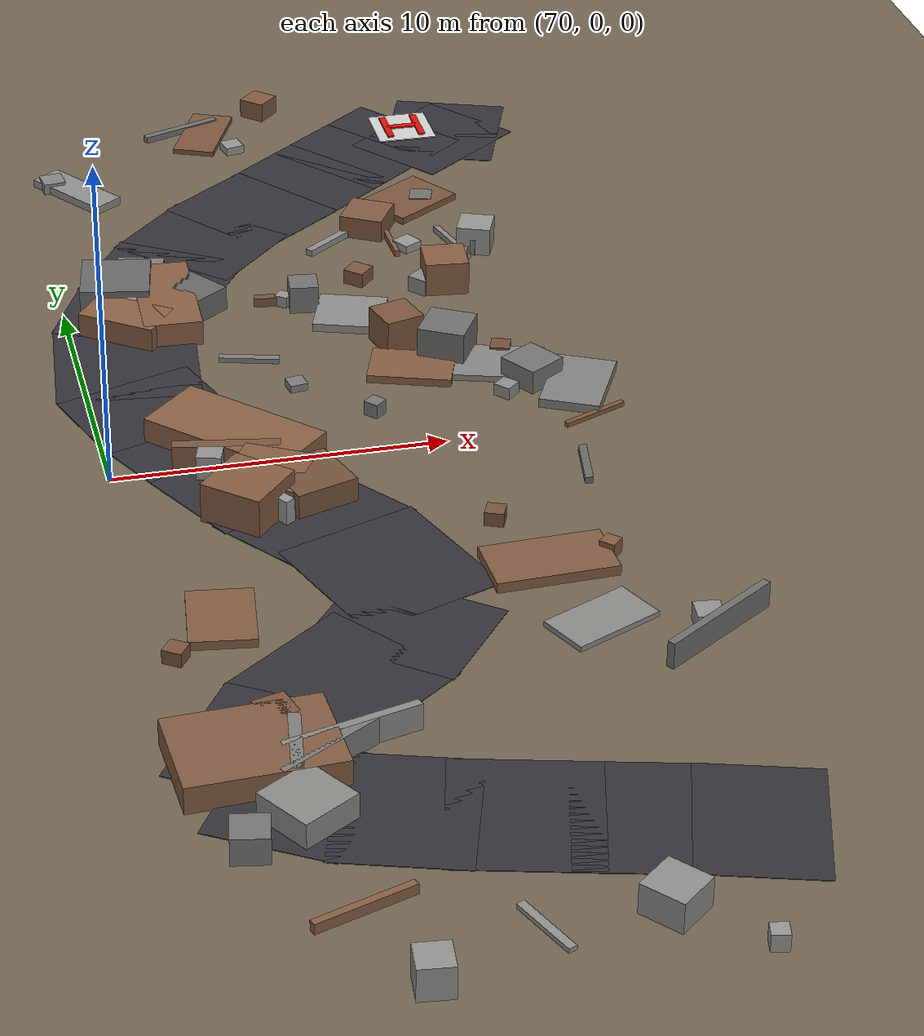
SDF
<sdf version="1.6">
 <world name="navitas_arena">
  <model name="ground_plane">
   <static>true</static>
   <link name="link">
    <collision name="collision">
     <geometry><plane><normal>0 0 1</normal><size>400 400</size></plane></geometry>
     <surface><friction><ode><mu>0.550</mu><mu2>0.550</mu2></ode></friction></surface>
    </collision>
    <visual name="visual">
     <cast_shadows>false</cast_shadows>
     <geometry><plane><normal>0 0 1</normal><size>400 400</size></plane></geometry>
     <material><ambient>0.450 0.400 0.320 1</ambient><diffuse>0.450 0.400 0.320 1</diffuse></material>
    </visual>
   </link>
  </model>
  <model name="road_zor_1_3">
   <static>true</static>
   <pose>83.267 -19.138 0.040 0 0 2.846</pose>
   <link name="link">
    <collision name="col"><geometry><box><size>3.385 4.400 0.020</size></box></geometry></collision>
    <visual name="vis">
     <geometry><box><size>3.385 4.400 0.020</size></box></geometry>
     <material><ambient>0.20 0.20 0.22 1</ambient><diffuse>0.20 0.20 0.22 1</diffuse></material>
    </visual>
   </link>
  </model>
  <model name="road_zor_1_4">
   <static>true</static>
   <pose>80.633 -18.409 0.040 0 0 2.893</pose>
   <link name="link">
    <collision name="col"><geometry><box><size>3.882 4.400 0.020</size></box></geometry></collision>
    <visual name="vis">
     <geometry><box><size>3.882 4.400 0.020</size></box></geometry>
     <material><ambient>0.20 0.20 0.22 1</ambient><diffuse>0.20 0.20 0.22 1</diffuse></material>
    </visual>
   </link>
  </model>
  <model name="road_zor_1_5">
   <static>true</static>
   <pose>77.702 -17.657 0.040 0 0 2.888</pose>
   <link name="link">
    <collision name="col"><geometry><box><size>3.970 4.400 0.020</size></box></geometry></collision>
    <visual name="vis">
     <geometry><box><size>3.970 4.400 0.020</size></box></geometry>
     <material><ambient>0.20 0.20 0.22 1</ambient><diffuse>0.20 0.20 0.22 1</diffuse></material>
    </visual>
   </link>
  </model>
  <model name="road_zor_1_6">
   <static>true</static>
   <pose>74.907 -16.853 0.040 0 0 2.833</pose>
   <link name="link">
    <collision name="col"><geometry><box><size>3.649 4.400 0.020</size></box></geometry></collision>
    <visual name="vis">
     <geometry><box><size>3.649 4.400 0.020</size></box></geometry>
     <material><ambient>0.20 0.20 0.22 1</ambient><diffuse>0.20 0.20 0.22 1</diffuse></material>
    </visual>
   </link>
  </model>
  <model name="road_zor_1_7">
   <static>true</static>
   <pose>72.438 -15.717 0.040 0 0 2.588</pose>
   <link name="link">
    <collision name="col"><geometry><box><size>3.627 4.400 0.020</size></box></geometry></collision>
    <visual name="vis">
     <geometry><box><size>3.627 4.400 0.020</size></box></geometry>
     <material><ambient>0.20 0.20 0.22 1</ambient><diffuse>0.20 0.20 0.22 1</diffuse></material>
    </visual>
   </link>
  </model>
  <model name="road_zor_1_8">
   <static>true</static>
   <pose>72.194 -13.587 0.040 0 0 0.996</pose>
   <link name="link">
    <collision name="col"><geometry><box><size>4.267 4.400 0.020</size></box></geometry></collision>
    <visual name="vis">
     <geometry><box><size>4.267 4.400 0.020</size></box></geometry>
     <material><ambient>0.20 0.20 0.22 1</ambient><diffuse>0.20 0.20 0.22 1</diffuse></material>
    </visual>
   </link>
  </model>
  <model name="road_zor_1_9">
   <static>true</static>
   <pose>74.497 -11.124 0.040 0 0 0.649</pose>
   <link name="link">
    <collision name="col"><geometry><box><size>4.380 4.400 0.020</size></box></geometry></collision>
    <visual name="vis">
     <geometry><box><size>4.380 4.400 0.020</size></box></geometry>
     <material><ambient>0.20 0.20 0.22 1</ambient><diffuse>0.20 0.20 0.22 1</diffuse></material>
    </visual>
   </link>
  </model>
  <model name="road_zor_1_10">
   <static>true</static>
   <pose>76.695 -9.036 0.040 0 0 0.907</pose>
   <link name="link">
    <collision name="col"><geometry><box><size>3.533 4.400 0.020</size></box></geometry></collision>
    <visual name="vis">
     <geometry><box><size>3.533 4.400 0.020</size></box></geometry>
     <material><ambient>0.20 0.20 0.22 1</ambient><diffuse>0.20 0.20 0.22 1</diffuse></material>
    </visual>
   </link>
  </model>
  <model name="road_zor_1_11">
   <static>true</static>
   <pose>76.862 -6.250 0.040 0 0 1.923</pose>
   <link name="link">
    <collision name="col"><geometry><box><size>4.629 4.400 0.020</size></box></geometry></collision>
    <visual name="vis">
     <geometry><box><size>4.629 4.400 0.020</size></box></geometry>
     <material><ambient>0.20 0.20 0.22 1</ambient><diffuse>0.20 0.20 0.22 1</diffuse></material>
    </visual>
   </link>
  </model>
  <model name="road_zor_1_12">
   <static>true</static>
   <pose>75.355 -3.333 0.040 0 0 2.208</pose>
   <link name="link">
    <collision name="col"><geometry><box><size>3.803 4.400 0.020</size></box></geometry></collision>
    <visual name="vis">
     <geometry><box><size>3.803 4.400 0.020</size></box></geometry>
     <material><ambient>0.20 0.20 0.22 1</ambient><diffuse>0.20 0.20 0.22 1</diffuse></material>
    </visual>
   </link>
  </model>
  <model name="road_zor_1_13">
   <static>true</static>
   <pose>73.875 -1.000 0.040 0 0 2.056</pose>
   <link name="link">
    <collision name="col"><geometry><box><size>3.538 4.400 0.020</size></box></geometry></collision>
    <visual name="vis">
     <geometry><box><size>3.538 4.400 0.020</size></box></geometry>
     <material><ambient>0.20 0.20 0.22 1</ambient><diffuse>0.20 0.20 0.22 1</diffuse></material>
    </visual>
   </link>
  </model>
  <model name="road_zor_1_14">
   <static>true</static>
   <pose>72.677 1.333 0.040 0 0 2.034</pose>
   <link name="link">
    <collision name="col"><geometry><box><size>3.508 4.400 0.020</size></box></geometry></collision>
    <visual name="vis">
     <geometry><box><size>3.508 4.400 0.020</size></box></geometry>
     <material><ambient>0.20 0.20 0.22 1</ambient><diffuse>0.20 0.20 0.22 1</diffuse></material>
    </visual>
   </link>
  </model>
  <model name="road_zor_1_15">
   <static>true</static>
   <pose>71.696 3.667 0.040 0 0 1.900</pose>
   <link name="link">
    <collision name="col"><geometry><box><size>3.366 4.400 0.020</size></box></geometry></collision>
    <visual name="vis">
     <geometry><box><size>3.366 4.400 0.020</size></box></geometry>
     <material><ambient>0.20 0.20 0.22 1</ambient><diffuse>0.20 0.20 0.22 1</diffuse></material>
    </visual>
   </link>
  </model>
  <model name="road_zor_1_16">
   <static>true</static>
   <pose>71.485 6.630 0.040 0 0 1.466</pose>
   <link name="link">
    <collision name="col"><geometry><box><size>4.512 4.400 0.020</size></box></geometry></collision>
    <visual name="vis">
     <geometry><box><size>4.512 4.400 0.020</size></box></geometry>
     <material><ambient>0.20 0.20 0.22 1</ambient><diffuse>0.20 0.20 0.22 1</diffuse></material>
    </visual>
   </link>
  </model>
  <model name="road_zor_1_17">
   <static>true</static>
   <pose>72.223 9.639 0.040 0 0 1.146</pose>
   <link name="link">
    <collision name="col"><geometry><box><size>3.563 4.400 0.020</size></box></geometry></collision>
    <visual name="vis">
     <geometry><box><size>3.563 4.400 0.020</size></box></geometry>
     <material><ambient>0.20 0.20 0.22 1</ambient><diffuse>0.20 0.20 0.22 1</diffuse></material>
    </visual>
   </link>
  </model>
  <model name="road_zor_1_18">
   <static>true</static>
   <pose>73.441 11.926 0.040 0 0 1.014</pose>
   <link name="link">
    <collision name="col"><geometry><box><size>3.430 4.400 0.020</size></box></geometry></collision>
    <visual name="vis">
     <geometry><box><size>3.430 4.400 0.020</size></box></geometry>
     <material><ambient>0.20 0.20 0.22 1</ambient><diffuse>0.20 0.20 0.22 1</diffuse></material>
    </visual>
   </link>
  </model>
  <model name="road_zor_1_19">
   <static>true</static>
   <pose>75.065 14.014 0.040 0 0 0.815</pose>
   <link name="link">
    <collision name="col"><geometry><box><size>3.687 4.400 0.020</size></box></geometry></collision>
    <visual name="vis">
     <geometry><box><size>3.687 4.400 0.020</size></box></geometry>
     <material><ambient>0.20 0.20 0.22 1</ambient><diffuse>0.20 0.20 0.22 1</diffuse></material>
    </visual>
   </link>
  </model>
  <model name="road_zor_1_20">
   <static>true</static>
   <pose>77.100 15.866 0.040 0 0 0.660</pose>
   <link name="link">
    <collision name="col"><geometry><box><size>3.634 4.400 0.020</size></box></geometry></collision>
    <visual name="vis">
     <geometry><box><size>3.634 4.400 0.020</size></box></geometry>
     <material><ambient>0.20 0.20 0.22 1</ambient><diffuse>0.20 0.20 0.22 1</diffuse></material>
    </visual>
   </link>
  </model>
  <model name="road_zor_1_21">
   <static>true</static>
   <pose>79.285 17.616 0.040 0 0 0.690</pose>
   <link name="link">
    <collision name="col"><geometry><box><size>3.765 4.400 0.020</size></box></geometry></collision>
    <visual name="vis">
     <geometry><box><size>3.765 4.400 0.020</size></box></geometry>
     <material><ambient>0.20 0.20 0.22 1</ambient><diffuse>0.20 0.20 0.22 1</diffuse></material>
    </visual>
   </link>
  </model>
  <model name="road_zor_1_22">
   <static>true</static>
   <pose>81.528 19.461 0.040 0 0 0.687</pose>
   <link name="link">
    <collision name="col"><geometry><box><size>3.844 4.400 0.020</size></box></geometry></collision>
    <visual name="vis">
     <geometry><box><size>3.844 4.400 0.020</size></box></geometry>
     <material><ambient>0.20 0.20 0.22 1</ambient><diffuse>0.20 0.20 0.22 1</diffuse></material>
    </visual>
   </link>
  </model>
  <model name="road_zor_1_23">
   <static>true</static>
   <pose>83.037 20.697 0.040 0 0 0.685</pose>
   <link name="link">
    <collision name="col"><geometry><box><size>1.857 4.400 0.020</size></box></geometry></collision>
    <visual name="vis">
     <geometry><box><size>1.857 4.400 0.020</size></box></geometry>
     <material><ambient>0.20 0.20 0.22 1</ambient><diffuse>0.20 0.20 0.22 1</diffuse></material>
    </visual>
   </link>
  </model>
  <model name="road_zor_2_18">
   <static>true</static>
   <pose>84.243 19.935 0.040 0 0 2.236</pose>
   <link name="link">
    <collision name="col"><geometry><box><size>3.607 4.400 0.020</size></box></geometry></collision>
    <visual name="vis">
     <geometry><box><size>3.607 4.400 0.020</size></box></geometry>
     <material><ambient>0.20 0.20 0.22 1</ambient><diffuse>0.20 0.20 0.22 1</diffuse></material>
    </visual>
   </link>
  </model>
  <model name="road_zor_3_26">
   <static>true</static>
   <pose>84.782 20.494 0.040 0 0 2.789</pose>
   <link name="link">
    <collision name="col"><geometry><box><size>3.828 4.400 0.020</size></box></geometry></collision>
    <visual name="vis">
     <geometry><box><size>3.828 4.400 0.020</size></box></geometry>
     <material><ambient>0.20 0.20 0.22 1</ambient><diffuse>0.20 0.20 0.22 1</diffuse></material>
    </visual>
   </link>
  </model>
  <model name="blk_zor_1_0_0">
   <static>true</static>
   <pose>71.615 -14.204 0.400 0 0 0.051</pose>
   <link name="link">
    <collision name="col"><geometry><box><size>4.305 2.989 0.800</size></box></geometry></collision>
    <visual name="vis">
     <geometry><box><size>4.305 2.989 0.800</size></box></geometry>
     <material><ambient>0.51 0.36 0.26 1</ambient><diffuse>0.51 0.36 0.26 1</diffuse></material>
    </visual>
   </link>
  </model>
  <model name="blk_zor_1_0_1">
   <static>true</static>
   <pose>72.615 -14.445 0.400 0 0 1.418</pose>
   <link name="link">
    <collision name="col"><geometry><box><size>2.310 0.341 0.800</size></box></geometry></collision>
    <visual name="vis">
     <geometry><box><size>2.310 0.341 0.800</size></box></geometry>
     <material><ambient>0.49 0.49 0.48 1</ambient><diffuse>0.49 0.49 0.48 1</diffuse></material>
    </visual>
   </link>
  </model>
  <model name="blk_zor_1_0_2">
   <static>true</static>
   <pose>72.478 -16.623 0.400 0 0 0.560</pose>
   <link name="link">
    <collision name="col"><geometry><box><size>1.789 1.789 0.800</size></box></geometry></collision>
    <visual name="vis">
     <geometry><box><size>1.789 1.789 0.800</size></box></geometry>
     <material><ambient>0.54 0.54 0.53 1</ambient><diffuse>0.54 0.54 0.53 1</diffuse></material>
    </visual>
   </link>
  </model>
  <model name="blk_zor_1_0_3">
   <static>true</static>
   <pose>74.141 -14.028 0.400 0 0 0.257</pose>
   <link name="link">
    <collision name="col"><geometry><box><size>3.917 0.243 0.800</size></box></geometry></collision>
    <visual name="vis">
     <geometry><box><size>3.917 0.243 0.800</size></box></geometry>
     <material><ambient>0.54 0.54 0.53 1</ambient><diffuse>0.54 0.54 0.53 1</diffuse></material>
    </visual>
   </link>
  </model>
  <model name="blk_zor_1_0_4">
   <static>true</static>
   <pose>72.392 -12.914 0.400 0 0 0.266</pose>
   <link name="link">
    <collision name="col"><geometry><box><size>0.949 0.949 0.800</size></box></geometry></collision>
    <visual name="vis">
     <geometry><box><size>0.949 0.949 0.800</size></box></geometry>
     <material><ambient>0.49 0.34 0.24 1</ambient><diffuse>0.49 0.34 0.24 1</diffuse></material>
    </visual>
   </link>
  </model>
  <model name="blk_zor_1_0_5">
   <static>true</static>
   <pose>70.871 -17.593 0.400 0 0 1.401</pose>
   <link name="link">
    <collision name="col"><geometry><box><size>1.012 1.012 0.800</size></box></geometry></collision>
    <visual name="vis">
     <geometry><box><size>1.012 1.012 0.800</size></box></geometry>
     <material><ambient>0.46 0.46 0.45 1</ambient><diffuse>0.46 0.46 0.45 1</diffuse></material>
    </visual>
   </link>
  </model>
  <model name="blk_zor_1_0_6">
   <static>true</static>
   <pose>73.392 -14.700 0.400 0 0 0.547</pose>
   <link name="link">
    <collision name="col"><geometry><box><size>3.239 0.311 0.800</size></box></geometry></collision>
    <visual name="vis">
     <geometry><box><size>3.239 0.311 0.800</size></box></geometry>
     <material><ambient>0.48 0.48 0.47 1</ambient><diffuse>0.48 0.48 0.47 1</diffuse></material>
    </visual>
   </link>
  </model>
  <model name="blk_zor_1_1_0">
   <static>true</static>
   <pose>72.890 -0.336 0.400 0 0 1.282</pose>
   <link name="link">
    <collision name="col"><geometry><box><size>0.741 0.741 0.800</size></box></geometry></collision>
    <visual name="vis">
     <geometry><box><size>0.741 0.741 0.800</size></box></geometry>
     <material><ambient>0.57 0.57 0.56 1</ambient><diffuse>0.57 0.57 0.56 1</diffuse></material>
    </visual>
   </link>
  </model>
  <model name="blk_zor_1_1_1">
   <static>true</static>
   <pose>73.845 0.943 0.400 0 0 2.340</pose>
   <link name="link">
    <collision name="col"><geometry><box><size>4.881 2.336 0.800</size></box></geometry></collision>
    <visual name="vis">
     <geometry><box><size>4.881 2.336 0.800</size></box></geometry>
     <material><ambient>0.54 0.38 0.27 1</ambient><diffuse>0.54 0.38 0.27 1</diffuse></material>
    </visual>
   </link>
  </model>
  <model name="blk_zor_1_1_2">
   <static>true</static>
   <pose>73.428 0.024 0.400 0 0 2.967</pose>
   <link name="link">
    <collision name="col"><geometry><box><size>3.143 0.373 0.800</size></box></geometry></collision>
    <visual name="vis">
     <geometry><box><size>3.143 0.373 0.800</size></box></geometry>
     <material><ambient>0.48 0.34 0.24 1</ambient><diffuse>0.48 0.34 0.24 1</diffuse></material>
    </visual>
   </link>
  </model>
  <model name="blk_zor_1_1_3">
   <static>true</static>
   <pose>73.942 -2.360 0.400 0 0 2.148</pose>
   <link name="link">
    <collision name="col"><geometry><box><size>2.575 0.329 0.800</size></box></geometry></collision>
    <visual name="vis">
     <geometry><box><size>2.575 0.329 0.800</size></box></geometry>
     <material><ambient>0.59 0.59 0.58 1</ambient><diffuse>0.59 0.59 0.58 1</diffuse></material>
    </visual>
   </link>
  </model>
  <model name="blk_zor_1_1_4">
   <static>true</static>
   <pose>74.392 -1.558 0.400 0 0 1.057</pose>
   <link name="link">
    <collision name="col"><geometry><box><size>2.168 2.168 0.800</size></box></geometry></collision>
    <visual name="vis">
     <geometry><box><size>2.168 2.168 0.800</size></box></geometry>
     <material><ambient>0.53 0.37 0.27 1</ambient><diffuse>0.53 0.37 0.27 1</diffuse></material>
    </visual>
   </link>
  </model>
  <model name="blk_zor_1_1_5">
   <static>true</static>
   <pose>75.519 -2.067 0.400 0 0 0.322</pose>
   <link name="link">
    <collision name="col"><geometry><box><size>1.921 1.921 0.800</size></box></geometry></collision>
    <visual name="vis">
     <geometry><box><size>1.921 1.921 0.800</size></box></geometry>
     <material><ambient>0.46 0.33 0.23 1</ambient><diffuse>0.46 0.33 0.23 1</diffuse></material>
    </visual>
   </link>
  </model>
  <model name="blk_zor_1_1_6">
   <static>true</static>
   <pose>73.570 -2.633 0.614 0 0 2.413</pose>
   <link name="link">
    <collision name="col"><geometry><box><size>1.939 1.939 1.229</size></box></geometry></collision>
    <visual name="vis">
     <geometry><box><size>1.939 1.939 1.229</size></box></geometry>
     <material><ambient>0.53 0.37 0.26 1</ambient><diffuse>0.53 0.37 0.26 1</diffuse></material>
    </visual>
   </link>
  </model>
  <model name="blk_zor_1_2_0">
   <static>true</static>
   <pose>72.004 9.799 0.400 0 0 1.012</pose>
   <link name="link">
    <collision name="col"><geometry><box><size>1.029 1.029 0.800</size></box></geometry></collision>
    <visual name="vis">
     <geometry><box><size>1.029 1.029 0.800</size></box></geometry>
     <material><ambient>0.58 0.58 0.57 1</ambient><diffuse>0.58 0.58 0.57 1</diffuse></material>
    </visual>
   </link>
  </model>
  <model name="blk_zor_1_2_1">
   <static>true</static>
   <pose>72.604 11.177 0.400 0 0 1.323</pose>
   <link name="link">
    <collision name="col"><geometry><box><size>1.476 1.476 0.800</size></box></geometry></collision>
    <visual name="vis">
     <geometry><box><size>1.476 1.476 0.800</size></box></geometry>
     <material><ambient>0.49 0.49 0.48 1</ambient><diffuse>0.49 0.49 0.48 1</diffuse></material>
    </visual>
   </link>
  </model>
  <model name="blk_zor_1_2_2">
   <static>true</static>
   <pose>71.776 8.450 0.400 0 0 2.511</pose>
   <link name="link">
    <collision name="col"><geometry><box><size>2.545 1.501 0.800</size></box></geometry></collision>
    <visual name="vis">
     <geometry><box><size>2.545 1.501 0.800</size></box></geometry>
     <material><ambient>0.54 0.38 0.27 1</ambient><diffuse>0.54 0.38 0.27 1</diffuse></material>
    </visual>
   </link>
  </model>
  <model name="blk_zor_1_2_4">
   <static>true</static>
   <pose>71.751 10.475 0.505 0 0 2.963</pose>
   <link name="link">
    <collision name="col"><geometry><box><size>2.173 2.173 1.010</size></box></geometry></collision>
    <visual name="vis">
     <geometry><box><size>2.173 2.173 1.010</size></box></geometry>
     <material><ambient>0.41 0.41 0.41 1</ambient><diffuse>0.41 0.41 0.41 1</diffuse></material>
    </visual>
   </link>
  </model>
  <model name="blk_zor_1_2_5">
   <static>true</static>
   <pose>73.626 9.604 0.400 0 0 2.192</pose>
   <link name="link">
    <collision name="col"><geometry><box><size>2.100 2.100 0.800</size></box></geometry></collision>
    <visual name="vis">
     <geometry><box><size>2.100 2.100 0.800</size></box></geometry>
     <material><ambient>0.41 0.41 0.40 1</ambient><diffuse>0.41 0.41 0.40 1</diffuse></material>
    </visual>
   </link>
  </model>
  <model name="blk_zor_1_2_6">
   <static>true</static>
   <pose>73.155 9.351 0.400 0 0 1.534</pose>
   <link name="link">
    <collision name="col"><geometry><box><size>4.032 1.830 0.800</size></box></geometry></collision>
    <visual name="vis">
     <geometry><box><size>4.032 1.830 0.800</size></box></geometry>
     <material><ambient>0.54 0.37 0.27 1</ambient><diffuse>0.54 0.37 0.27 1</diffuse></material>
    </visual>
   </link>
  </model>
  <model name="deb_zor_9">
   <static>true</static>
   <pose>71.554 18.321 0.132 0 0 2.180</pose>
   <link name="link">
    <collision name="col"><geometry><box><size>3.110 1.075 0.264</size></box></geometry></collision>
    <visual name="vis">
     <geometry><box><size>3.110 1.075 0.264</size></box></geometry>
     <material><ambient>0.56 0.56 0.55 1</ambient><diffuse>0.56 0.56 0.55 1</diffuse></material>
    </visual>
   </link>
  </model>
  <model name="deb_zor_15">
   <static>true</static>
   <pose>77.094 -21.873 0.067 0 0 1.970</pose>
   <link name="link">
    <collision name="col"><geometry><box><size>2.002 0.242 0.134</size></box></geometry></collision>
    <visual name="vis">
     <geometry><box><size>2.002 0.242 0.134</size></box></geometry>
     <material><ambient>0.57 0.57 0.55 1</ambient><diffuse>0.57 0.57 0.55 1</diffuse></material>
    </visual>
   </link>
  </model>
  <model name="deb_zor_20">
   <static>true</static>
   <pose>82.381 2.319 0.192 0 0 0.739</pose>
   <link name="link">
    <collision name="col"><geometry><box><size>0.547 0.547 0.384</size></box></geometry></collision>
    <visual name="vis">
     <geometry><box><size>0.547 0.547 0.384</size></box></geometry>
     <material><ambient>0.56 0.56 0.54 1</ambient><diffuse>0.56 0.56 0.54 1</diffuse></material>
    </visual>
   </link>
  </model>
  <model name="deb_zor_22">
   <static>true</static>
   <pose>82.171 9.470 0.546 0 0 3.047</pose>
   <link name="link">
    <collision name="col"><geometry><box><size>1.381 1.381 1.093</size></box></geometry></collision>
    <visual name="vis">
     <geometry><box><size>1.381 1.381 1.093</size></box></geometry>
     <material><ambient>0.53 0.37 0.27 1</ambient><diffuse>0.53 0.37 0.27 1</diffuse></material>
    </visual>
   </link>
  </model>
  <model name="deb_zor_23">
   <static>true</static>
   <pose>83.563 11.591 0.262 0 0 0.883</pose>
   <link name="link">
    <collision name="col"><geometry><box><size>0.556 0.556 0.523</size></box></geometry></collision>
    <visual name="vis">
     <geometry><box><size>0.556 0.556 0.523</size></box></geometry>
     <material><ambient>0.55 0.55 0.54 1</ambient><diffuse>0.55 0.55 0.54 1</diffuse></material>
    </visual>
   </link>
  </model>
  <model name="deb_zor_24">
   <static>true</static>
   <pose>81.573 12.208 0.134 0 0 0.517</pose>
   <link name="link">
    <collision name="col"><geometry><box><size>0.661 0.661 0.269</size></box></geometry></collision>
    <visual name="vis">
     <geometry><box><size>0.661 0.661 0.269</size></box></geometry>
     <material><ambient>0.60 0.60 0.59 1</ambient><diffuse>0.60 0.60 0.59 1</diffuse></material>
    </visual>
   </link>
  </model>
  <model name="deb_zor_30">
   <static>true</static>
   <pose>70.422 -9.254 0.213 0 0 2.539</pose>
   <link name="link">
    <collision name="col"><geometry><box><size>0.574 0.574 0.425</size></box></geometry></collision>
    <visual name="vis">
     <geometry><box><size>0.574 0.574 0.425</size></box></geometry>
     <material><ambient>0.49 0.34 0.24 1</ambient><diffuse>0.49 0.34 0.24 1</diffuse></material>
    </visual>
   </link>
  </model>
  <model name="deb_zor_35">
   <static>true</static>
   <pose>82.336 15.356 0.112 0 0 0.584</pose>
   <link name="link">
    <collision name="col"><geometry><box><size>2.546 1.958 0.224</size></box></geometry></collision>
    <visual name="vis">
     <geometry><box><size>2.546 1.958 0.224</size></box></geometry>
     <material><ambient>0.49 0.34 0.24 1</ambient><diffuse>0.49 0.34 0.24 1</diffuse></material>
    </visual>
   </link>
  </model>
  <model name="deb_zor_37">
   <static>true</static>
   <pose>82.782 15.442 0.126 0 0 2.843</pose>
   <link name="link">
    <collision name="col"><geometry><box><size>0.730 0.730 0.252</size></box></geometry></collision>
    <visual name="vis">
     <geometry><box><size>0.730 0.730 0.252</size></box></geometry>
     <material><ambient>0.44 0.44 0.44 1</ambient><diffuse>0.44 0.44 0.44 1</diffuse></material>
    </visual>
   </link>
  </model>
  <model name="deb_zor_40">
   <static>true</static>
   <pose>81.428 9.286 0.262 0 0 0.711</pose>
   <link name="link">
    <collision name="col"><geometry><box><size>0.670 0.670 0.523</size></box></geometry></collision>
    <visual name="vis">
     <geometry><box><size>0.670 0.670 0.523</size></box></geometry>
     <material><ambient>0.54 0.54 0.53 1</ambient><diffuse>0.54 0.54 0.53 1</diffuse></material>
    </visual>
   </link>
  </model>
  <model name="deb_zor_46">
   <static>true</static>
   <pose>80.228 -21.871 0.448 0 0 2.271</pose>
   <link name="link">
    <collision name="col"><geometry><box><size>1.284 1.284 0.896</size></box></geometry></collision>
    <visual name="vis">
     <geometry><box><size>1.284 1.284 0.896</size></box></geometry>
     <material><ambient>0.56 0.56 0.55 1</ambient><diffuse>0.56 0.56 0.55 1</diffuse></material>
    </visual>
   </link>
  </model>
  <model name="deb_zor_55">
   <static>true</static>
   <pose>74.058 -23.287 0.478 0 0 3.040</pose>
   <link name="link">
    <collision name="col"><geometry><box><size>0.954 0.954 0.956</size></box></geometry></collision>
    <visual name="vis">
     <geometry><box><size>0.954 0.954 0.956</size></box></geometry>
     <material><ambient>0.57 0.57 0.56 1</ambient><diffuse>0.57 0.57 0.56 1</diffuse></material>
    </visual>
   </link>
  </model>
  <model name="deb_zor_56">
   <static>true</static>
   <pose>83.766 11.779 0.462 0 0 2.761</pose>
   <link name="link">
    <collision name="col"><geometry><box><size>1.098 1.098 0.923</size></box></geometry></collision>
    <visual name="vis">
     <geometry><box><size>1.098 1.098 0.923</size></box></geometry>
     <material><ambient>0.59 0.59 0.58 1</ambient><diffuse>0.59 0.59 0.58 1</diffuse></material>
    </visual>
   </link>
  </model>
  <model name="deb_zor_58">
   <static>true</static>
   <pose>77.490 9.052 0.442 0 0 1.458</pose>
   <link name="link">
    <collision name="col"><geometry><box><size>0.908 0.908 0.884</size></box></geometry></collision>
    <visual name="vis">
     <geometry><box><size>0.908 0.908 0.884</size></box></geometry>
     <material><ambient>0.45 0.45 0.44 1</ambient><diffuse>0.45 0.45 0.44 1</diffuse></material>
    </visual>
   </link>
  </model>
  <model name="deb_zor_62">
   <static>true</static>
   <pose>81.843 -9.961 0.082 0 0 0.435</pose>
   <link name="link">
    <collision name="col"><geometry><box><size>2.774 1.533 0.165</size></box></geometry></collision>
    <visual name="vis">
     <geometry><box><size>2.774 1.533 0.165</size></box></geometry>
     <material><ambient>0.54 0.54 0.53 1</ambient><diffuse>0.54 0.54 0.53 1</diffuse></material>
    </visual>
   </link>
  </model>
  <model name="deb_zor_64">
   <static>true</static>
   <pose>71.882 -7.817 0.132 0 0 1.439</pose>
   <link name="link">
    <collision name="col"><geometry><box><size>2.451 1.878 0.265</size></box></geometry></collision>
    <visual name="vis">
     <geometry><box><size>2.451 1.878 0.265</size></box></geometry>
     <material><ambient>0.51 0.36 0.25 1</ambient><diffuse>0.51 0.36 0.25 1</diffuse></material>
    </visual>
   </link>
  </model>
  <model name="deb_zor_65">
   <static>true</static>
   <pose>78.703 23.286 0.323 0 0 2.384</pose>
   <link name="link">
    <collision name="col"><geometry><box><size>0.906 0.906 0.646</size></box></geometry></collision>
    <visual name="vis">
     <geometry><box><size>0.906 0.906 0.646</size></box></geometry>
     <material><ambient>0.51 0.36 0.25 1</ambient><diffuse>0.51 0.36 0.25 1</diffuse></material>
    </visual>
   </link>
  </model>
  <model name="deb_zor_66">
   <static>true</static>
   <pose>84.614 0.496 0.071 0 0 0.410</pose>
   <link name="link">
    <collision name="col"><geometry><box><size>2.170 0.167 0.142</size></box></geometry></collision>
    <visual name="vis">
     <geometry><box><size>2.170 0.167 0.142</size></box></geometry>
     <material><ambient>0.50 0.35 0.25 1</ambient><diffuse>0.50 0.35 0.25 1</diffuse></material>
    </visual>
   </link>
  </model>
  <model name="deb_zor_70">
   <static>true</static>
   <pose>79.834 6.089 0.560 0 0 0.273</pose>
   <link name="link">
    <collision name="col"><geometry><box><size>1.250 1.250 1.120</size></box></geometry></collision>
    <visual name="vis">
     <geometry><box><size>1.250 1.250 1.120</size></box></geometry>
     <material><ambient>0.49 0.34 0.24 1</ambient><diffuse>0.49 0.34 0.24 1</diffuse></material>
    </visual>
   </link>
  </model>
  <model name="deb_zor_72">
   <static>true</static>
   <pose>83.348 3.022 0.375 0 0 2.136</pose>
   <link name="link">
    <collision name="col"><geometry><box><size>1.319 1.319 0.750</size></box></geometry></collision>
    <visual name="vis">
     <geometry><box><size>1.319 1.319 0.750</size></box></geometry>
     <material><ambient>0.46 0.46 0.45 1</ambient><diffuse>0.46 0.46 0.45 1</diffuse></material>
    </visual>
   </link>
  </model>
  <model name="deb_zor_76">
   <static>true</static>
   <pose>84.580 -10.726 0.262 0 0 3.045</pose>
   <link name="link">
    <collision name="col"><geometry><box><size>0.755 0.755 0.524</size></box></geometry></collision>
    <visual name="vis">
     <geometry><box><size>0.755 0.755 0.524</size></box></geometry>
     <material><ambient>0.57 0.57 0.56 1</ambient><diffuse>0.57 0.57 0.56 1</diffuse></material>
    </visual>
   </link>
  </model>
  <model name="deb_zor_81">
   <static>true</static>
   <pose>79.537 10.291 0.238 0 0 2.395</pose>
   <link name="link">
    <collision name="col"><geometry><box><size>0.681 0.681 0.476</size></box></geometry></collision>
    <visual name="vis">
     <geometry><box><size>0.681 0.681 0.476</size></box></geometry>
     <material><ambient>0.49 0.35 0.25 1</ambient><diffuse>0.49 0.35 0.25 1</diffuse></material>
    </visual>
   </link>
  </model>
  <model name="deb_zor_84">
   <static>true</static>
   <pose>81.174 -7.031 0.155 0 0 0.041</pose>
   <link name="link">
    <collision name="col"><geometry><box><size>3.548 1.913 0.310</size></box></geometry></collision>
    <visual name="vis">
     <geometry><box><size>3.548 1.913 0.310</size></box></geometry>
     <material><ambient>0.51 0.36 0.26 1</ambient><diffuse>0.51 0.36 0.26 1</diffuse></material>
    </visual>
   </link>
  </model>
  <model name="deb_zor_85">
   <static>true</static>
   <pose>82.198 -23.617 0.254 0 0 1.374</pose>
   <link name="link">
    <collision name="col"><geometry><box><size>0.477 0.477 0.509</size></box></geometry></collision>
    <visual name="vis">
     <geometry><box><size>0.477 0.477 0.509</size></box></geometry>
     <material><ambient>0.59 0.59 0.58 1</ambient><diffuse>0.59 0.59 0.58 1</diffuse></material>
    </visual>
   </link>
  </model>
  <model name="deb_zor_86">
   <static>true</static>
   <pose>82.996 -6.807 0.232 0 0 0.786</pose>
   <link name="link">
    <collision name="col"><geometry><box><size>0.474 0.474 0.464</size></box></geometry></collision>
    <visual name="vis">
     <geometry><box><size>0.474 0.474 0.464</size></box></geometry>
     <material><ambient>0.52 0.36 0.26 1</ambient><diffuse>0.52 0.36 0.26 1</diffuse></material>
    </visual>
   </link>
  </model>
  <model name="deb_zor_89">
   <static>true</static>
   <pose>77.270 20.577 0.141 0 0 1.803</pose>
   <link name="link">
    <collision name="col"><geometry><box><size>0.630 0.630 0.283</size></box></geometry></collision>
    <visual name="vis">
     <geometry><box><size>0.630 0.630 0.283</size></box></geometry>
     <material><ambient>0.59 0.59 0.58 1</ambient><diffuse>0.59 0.59 0.58 1</diffuse></material>
    </visual>
   </link>
  </model>
  <model name="deb_zor_90">
   <static>true</static>
   <pose>78.272 2.035 0.229 0 0 2.276</pose>
   <link name="link">
    <collision name="col"><geometry><box><size>0.477 0.477 0.458</size></box></geometry></collision>
    <visual name="vis">
     <geometry><box><size>0.477 0.477 0.458</size></box></geometry>
     <material><ambient>0.47 0.47 0.46 1</ambient><diffuse>0.47 0.47 0.46 1</diffuse></material>
    </visual>
   </link>
  </model>
  <model name="deb_zor_93">
   <static>true</static>
   <pose>76.833 9.309 0.146 0 0 2.970</pose>
   <link name="link">
    <collision name="col"><geometry><box><size>1.738 0.272 0.293</size></box></geometry></collision>
    <visual name="vis">
     <geometry><box><size>1.738 0.272 0.293</size></box></geometry>
     <material><ambient>0.47 0.33 0.24 1</ambient><diffuse>0.47 0.33 0.24 1</diffuse></material>
    </visual>
   </link>
  </model>
  <model name="deb_zor_94">
   <static>true</static>
   <pose>83.574 -2.236 0.099 0 0 1.409</pose>
   <link name="link">
    <collision name="col"><geometry><box><size>1.812 0.239 0.198</size></box></geometry></collision>
    <visual name="vis">
     <geometry><box><size>1.812 0.239 0.198</size></box></geometry>
     <material><ambient>0.41 0.41 0.40 1</ambient><diffuse>0.41 0.41 0.40 1</diffuse></material>
    </visual>
   </link>
  </model>
  <model name="deb_zor_103">
   <static>true</static>
   <pose>84.574 2.182 0.144 0 0 1.105</pose>
   <link name="link">
    <collision name="col"><geometry><box><size>2.799 1.845 0.287</size></box></geometry></collision>
    <visual name="vis">
     <geometry><box><size>2.799 1.845 0.287</size></box></geometry>
     <material><ambient>0.51 0.51 0.50 1</ambient><diffuse>0.51 0.51 0.50 1</diffuse></material>
    </visual>
   </link>
  </model>
  <model name="deb_zor_107">
   <static>true</static>
   <pose>79.453 13.197 0.104 0 0 0.649</pose>
   <link name="link">
    <collision name="col"><geometry><box><size>2.797 0.251 0.208</size></box></geometry></collision>
    <visual name="vis">
     <geometry><box><size>2.797 0.251 0.208</size></box></geometry>
     <material><ambient>0.56 0.56 0.55 1</ambient><diffuse>0.56 0.56 0.55 1</diffuse></material>
    </visual>
   </link>
  </model>
  <model name="deb_zor_108">
   <static>true</static>
   <pose>73.091 -20.356 0.153 0 0 0.328</pose>
   <link name="link">
    <collision name="col"><geometry><box><size>2.872 0.213 0.305</size></box></geometry></collision>
    <visual name="vis">
     <geometry><box><size>2.872 0.213 0.305</size></box></geometry>
     <material><ambient>0.53 0.37 0.27 1</ambient><diffuse>0.53 0.37 0.27 1</diffuse></material>
    </visual>
   </link>
  </model>
  <model name="deb_zor_112">
   <static>true</static>
   <pose>76.276 4.051 0.121 0 0 0.156</pose>
   <link name="link">
    <collision name="col"><geometry><box><size>0.549 0.549 0.242</size></box></geometry></collision>
    <visual name="vis">
     <geometry><box><size>0.549 0.549 0.242</size></box></geometry>
     <material><ambient>0.49 0.49 0.48 1</ambient><diffuse>0.49 0.49 0.48 1</diffuse></material>
    </visual>
   </link>
  </model>
  <model name="deb_zor_121">
   <static>true</static>
   <pose>79.907 4.287 0.121 0 0 2.810</pose>
   <link name="link">
    <collision name="col"><geometry><box><size>2.580 1.716 0.243</size></box></geometry></collision>
    <visual name="vis">
     <geometry><box><size>2.580 1.716 0.243</size></box></geometry>
     <material><ambient>0.53 0.37 0.26 1</ambient><diffuse>0.53 0.37 0.26 1</diffuse></material>
    </visual>
   </link>
  </model>
  <model name="deb_zor_126">
   <static>true</static>
   <pose>70.826 18.997 0.184 0 0 1.674</pose>
   <link name="link">
    <collision name="col"><geometry><box><size>0.736 0.736 0.368</size></box></geometry></collision>
    <visual name="vis">
     <geometry><box><size>0.736 0.736 0.368</size></box></geometry>
     <material><ambient>0.53 0.53 0.52 1</ambient><diffuse>0.53 0.53 0.52 1</diffuse></material>
    </visual>
   </link>
  </model>
  <model name="deb_zor_131">
   <static>true</static>
   <pose>75.754 22.398 0.104 0 0 0.351</pose>
   <link name="link">
    <collision name="col"><geometry><box><size>2.794 0.247 0.209</size></box></geometry></collision>
    <visual name="vis">
     <geometry><box><size>2.794 0.247 0.209</size></box></geometry>
     <material><ambient>0.45 0.45 0.44 1</ambient><diffuse>0.45 0.45 0.44 1</diffuse></material>
    </visual>
   </link>
  </model>
  <model name="deb_zor_134">
   <static>true</static>
   <pose>76.900 9.285 0.184 0 0 2.493</pose>
   <link name="link">
    <collision name="col"><geometry><box><size>0.411 0.411 0.368</size></box></geometry></collision>
    <visual name="vis">
     <geometry><box><size>0.411 0.411 0.368</size></box></geometry>
     <material><ambient>0.59 0.59 0.57 1</ambient><diffuse>0.59 0.59 0.57 1</diffuse></material>
    </visual>
   </link>
  </model>
  <model name="deb_zor_141">
   <static>true</static>
   <pose>80.296 -4.513 0.213 0 0 2.740</pose>
   <link name="link">
    <collision name="col"><geometry><box><size>0.562 0.562 0.427</size></box></geometry></collision>
    <visual name="vis">
     <geometry><box><size>0.562 0.562 0.427</size></box></geometry>
     <material><ambient>0.47 0.33 0.23 1</ambient><diffuse>0.47 0.33 0.23 1</diffuse></material>
    </visual>
   </link>
  </model>
  <model name="deb_zor_150">
   <static>true</static>
   <pose>82.796 10.637 0.269 0 0 2.765</pose>
   <link name="link">
    <collision name="col"><geometry><box><size>0.767 0.767 0.538</size></box></geometry></collision>
    <visual name="vis">
     <geometry><box><size>0.767 0.767 0.538</size></box></geometry>
     <material><ambient>0.54 0.54 0.53 1</ambient><diffuse>0.54 0.54 0.53 1</diffuse></material>
    </visual>
   </link>
  </model>
  <model name="deb_zor_151">
   <static>true</static>
   <pose>82.566 3.974 0.095 0 0 2.841</pose>
   <link name="link">
    <collision name="col"><geometry><box><size>2.720 1.913 0.191</size></box></geometry></collision>
    <visual name="vis">
     <geometry><box><size>2.720 1.913 0.191</size></box></geometry>
     <material><ambient>0.53 0.53 0.52 1</ambient><diffuse>0.53 0.53 0.52 1</diffuse></material>
    </visual>
   </link>
  </model>
  <model name="deb_zor_158">
   <static>true</static>
   <pose>81.199 5.034 0.582 0 0 2.618</pose>
   <link name="link">
    <collision name="col"><geometry><box><size>1.476 1.476 1.165</size></box></geometry></collision>
    <visual name="vis">
     <geometry><box><size>1.476 1.476 1.165</size></box></geometry>
     <material><ambient>0.44 0.44 0.43 1</ambient><diffuse>0.44 0.44 0.43 1</diffuse></material>
    </visual>
   </link>
  </model>
  <model name="deb_zor_160">
   <static>true</static>
   <pose>76.481 21.889 0.082 0 0 1.163</pose>
   <link name="link">
    <collision name="col"><geometry><box><size>2.926 1.409 0.165</size></box></geometry></collision>
    <visual name="vis">
     <geometry><box><size>2.926 1.409 0.165</size></box></geometry>
     <material><ambient>0.49 0.34 0.25 1</ambient><diffuse>0.49 0.34 0.25 1</diffuse></material>
    </visual>
   </link>
  </model>
  <model name="deb_zor_161">
   <static>true</static>
   <pose>80.575 13.743 0.366 0 0 1.048</pose>
   <link name="link">
    <collision name="col"><geometry><box><size>1.432 1.432 0.731</size></box></geometry></collision>
    <visual name="vis">
     <geometry><box><size>1.432 1.432 0.731</size></box></geometry>
     <material><ambient>0.51 0.36 0.26 1</ambient><diffuse>0.51 0.36 0.26 1</diffuse></material>
    </visual>
   </link>
  </model>
  <model name="deb_zor_175">
   <static>true</static>
   <pose>81.105 12.475 0.104 0 0 1.605</pose>
   <link name="link">
    <collision name="col"><geometry><box><size>1.595 0.158 0.208</size></box></geometry></collision>
    <visual name="vis">
     <geometry><box><size>1.595 0.158 0.208</size></box></geometry>
     <material><ambient>0.53 0.37 0.26 1</ambient><diffuse>0.53 0.37 0.26 1</diffuse></material>
    </visual>
   </link>
  </model>
  <model name="deb_zor_179">
   <static>true</static>
   <pose>78.782 7.972 0.129 0 0 1.241</pose>
   <link name="link">
    <collision name="col"><geometry><box><size>1.993 2.151 0.259</size></box></geometry></collision>
    <visual name="vis">
     <geometry><box><size>1.993 2.151 0.259</size></box></geometry>
     <material><ambient>0.55 0.55 0.54 1</ambient><diffuse>0.55 0.55 0.54 1</diffuse></material>
    </visual>
   </link>
  </model>
  <model name="deb_zor_180">
   <static>true</static>
   <pose>83.057 12.076 0.099 0 0 1.825</pose>
   <link name="link">
    <collision name="col"><geometry><box><size>2.222 0.190 0.199</size></box></geometry></collision>
    <visual name="vis">
     <geometry><box><size>2.222 0.190 0.199</size></box></geometry>
     <material><ambient>0.54 0.54 0.53 1</ambient><diffuse>0.54 0.54 0.53 1</diffuse></material>
    </visual>
   </link>
  </model>
  <model name="deb_zor_183">
   <static>true</static>
   <pose>75.179 5.955 0.078 0 0 2.870</pose>
   <link name="link">
    <collision name="col"><geometry><box><size>1.847 0.250 0.156</size></box></geometry></collision>
    <visual name="vis">
     <geometry><box><size>1.847 0.250 0.156</size></box></geometry>
     <material><ambient>0.49 0.49 0.48 1</ambient><diffuse>0.49 0.49 0.48 1</diffuse></material>
    </visual>
   </link>
  </model>
  <model name="deb_zor_187">
   <static>true</static>
   <pose>82.856 4.911 0.132 0 0 1.224</pose>
   <link name="link">
    <collision name="col"><geometry><box><size>0.611 0.611 0.264</size></box></geometry></collision>
    <visual name="vis">
     <geometry><box><size>0.611 0.611 0.264</size></box></geometry>
     <material><ambient>0.46 0.32 0.23 1</ambient><diffuse>0.46 0.32 0.23 1</diffuse></material>
    </visual>
   </link>
  </model>
  <model name="chic_zor_0">
   <static>true</static>
   <pose>84.688 -11.294 0.400 0 0 0.587</pose>
   <link name="link">
    <collision name="col"><geometry><box><size>4.051 0.236 0.800</size></box></geometry></collision>
    <visual name="vis">
     <geometry><box><size>4.051 0.236 0.800</size></box></geometry>
     <material><ambient>0.43 0.43 0.42 1</ambient><diffuse>0.43 0.43 0.42 1</diffuse></material>
    </visual>
   </link>
  </model>
  <model name="hbpad_zor">
   <static>true</static>
   <pose>83.408 21.000 0.070 0 0 0.000</pose>
   <link name="link">
    <collision name="col"><geometry><box><size>2.000 2.000 0.040</size></box></geometry></collision>
    <visual name="vis">
     <geometry><box><size>2.000 2.000 0.040</size></box></geometry>
     <material><ambient>0.82 0.82 0.82 1</ambient><diffuse>0.82 0.82 0.82 1</diffuse></material>
    </visual>
   </link>
  </model>
  <model name="H_zor_l">
   <static>true</static>
   <pose>82.858 21.000 0.100 0 0 0.000</pose>
   <link name="link">
    <collision name="col"><geometry><box><size>0.220 1.550 0.100</size></box></geometry></collision>
    <visual name="vis">
     <geometry><box><size>0.220 1.550 0.100</size></box></geometry>
     <material><ambient>0.90 0.05 0.05 1</ambient><diffuse>0.90 0.05 0.05 1</diffuse></material>
    </visual>
   </link>
  </model>
  <model name="H_zor_r">
   <static>true</static>
   <pose>83.958 21.000 0.100 0 0 0.000</pose>
   <link name="link">
    <collision name="col"><geometry><box><size>0.220 1.550 0.100</size></box></geometry></collision>
    <visual name="vis">
     <geometry><box><size>0.220 1.550 0.100</size></box></geometry>
     <material><ambient>0.90 0.05 0.05 1</ambient><diffuse>0.90 0.05 0.05 1</diffuse></material>
    </visual>
   </link>
  </model>
  <model name="H_zor_b">
   <static>true</static>
   <pose>83.408 21.000 0.100 0 0 0.000</pose>
   <link name="link">
    <collision name="col"><geometry><box><size>1.100 0.220 0.100</size></box></geometry></collision>
    <visual name="vis">
     <geometry><box><size>1.100 0.220 0.100</size></box></geometry>
     <material><ambient>0.90 0.05 0.05 1</ambient><diffuse>0.90 0.05 0.05 1</diffuse></material>
    </visual>
   </link>
  </model>
 </world>
</sdf>
